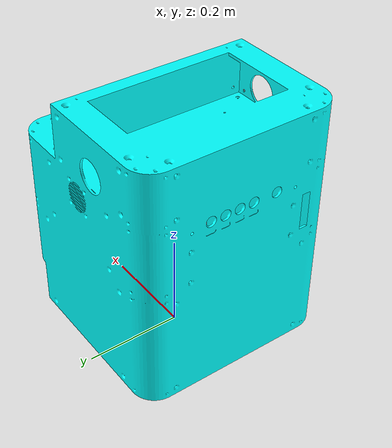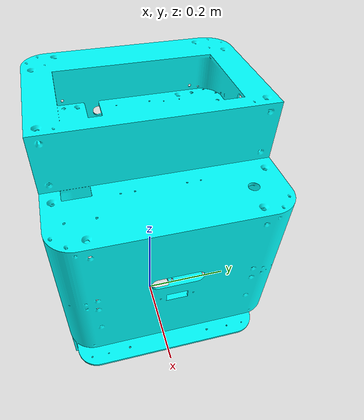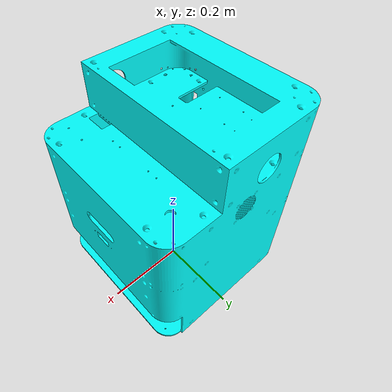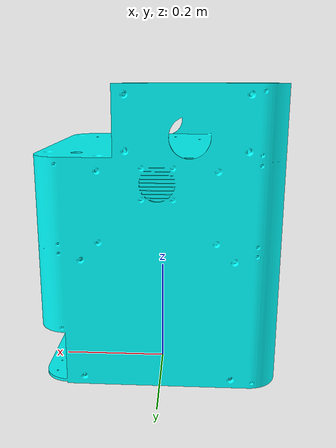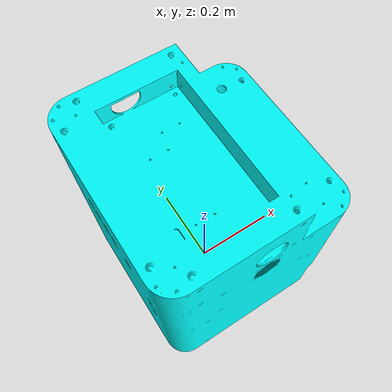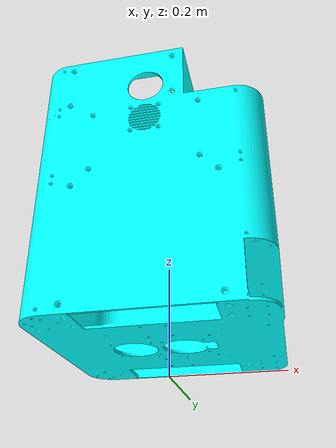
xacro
<?xml version="1.0"?>
<robot name="testz"
  xmlns:xacro="http://ros.org/wiki/xacro">

  <link name="base_footprint"/>

  <link name="base_link">
    <visual>
      <geometry>
        <mesh filename="package://warehousebot_simulation/meshes/bot_chassis.stl" scale="0.01 0.01 0.01"/>
      </geometry>
      <material name="Cyan">
        <color rgba="0 1.0 1.0 1.0"/>
      </material>
      <origin rpy="0 0 0" xyz="0 0 0"/>
    </visual>
    <collision name="base_collision">
      <geometry>
        <mesh filename="package://warehousebot_simulation/meshes/bot_chassis.stl" scale="0.01 0.01 0.01"/>
      </geometry>
      <origin rpy="0 0 0" xyz="0 0 0"/>
    </collision>

    <inertial>
      <mass value="550"/>
      <origin rpy="0 0 0" xyz="0 0 0 "/>
      <inertia ixx="220" ixy="0" ixz="0" iyy="220" iyz="0" izz="220"/>
    </inertial>
  </link>

  <joint name="base_footprint_to_base_link" type="fixed">
    <parent link="base_footprint"/>
    <child link="base_link"/>
    <origin xyz="0.0 0.0 0.05"/>
  </joint>`

</robot>
